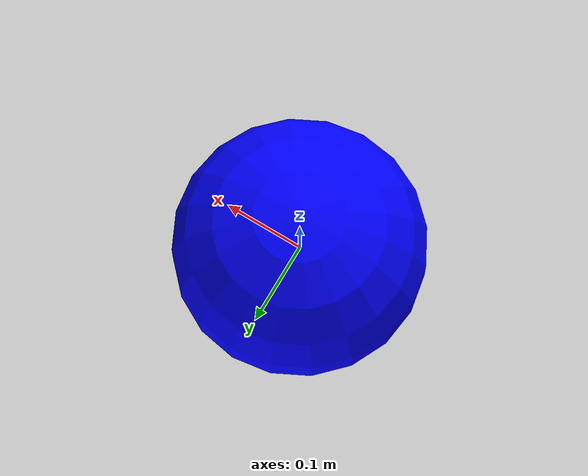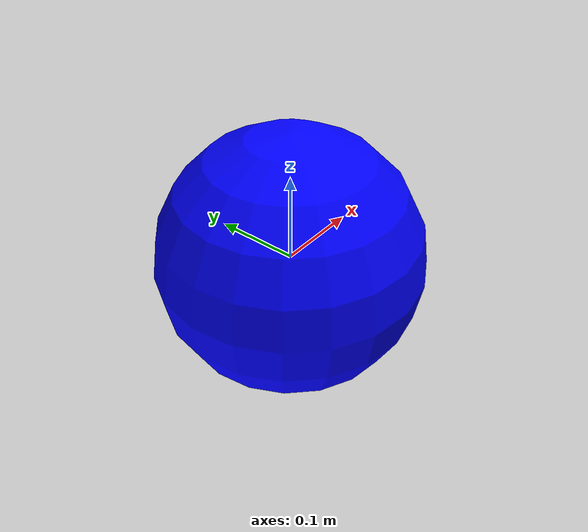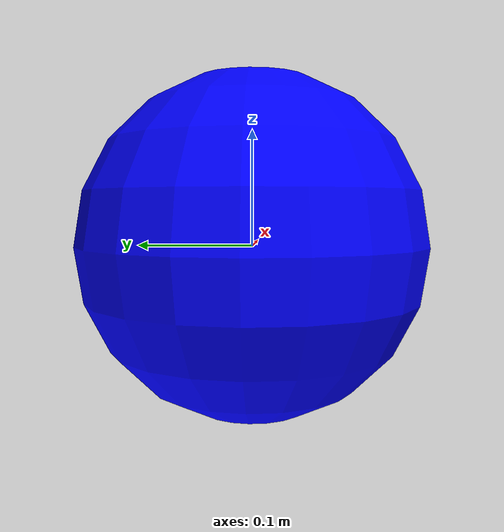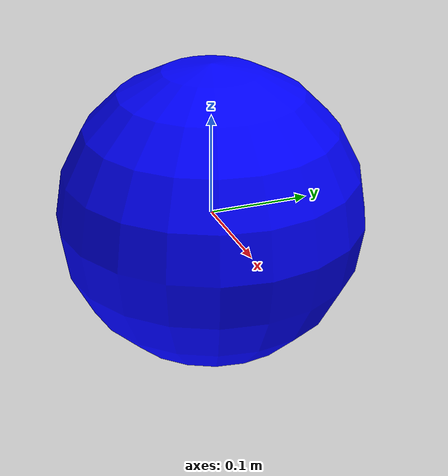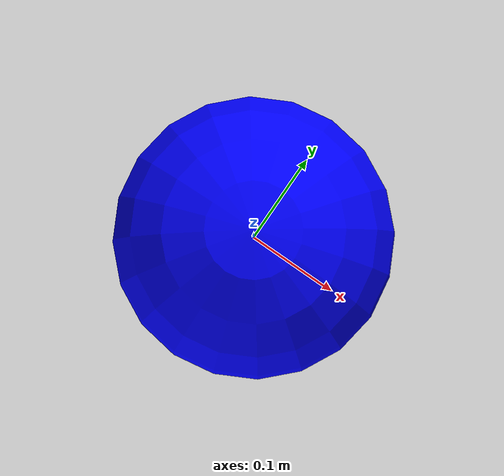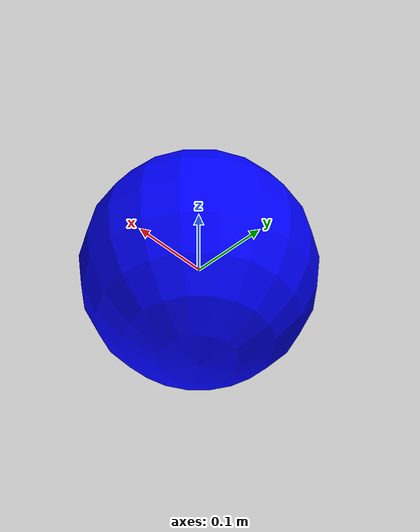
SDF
<?xml version="1.0" encoding="UTF-8"?>
<sdf version='1.9'>
  <model name='spherical_object'>
    <static>true</static>
    <pose>0 0 0.001 0 0 0</pose>
    <link name='base'>
      <visual name="visual">
        <geometry>
          <sphere>
            <!-- Raggio della sfera in metri -->
            <radius>0.15</radius>
          </sphere>
        </geometry>
        <material>
          <!-- Colore blu -->
          <ambient>0 0 1 1</ambient>
          <diffuse>0 0 1 1</diffuse>
        </material>
      </visual>
    </link>
  </model>
</sdf>
